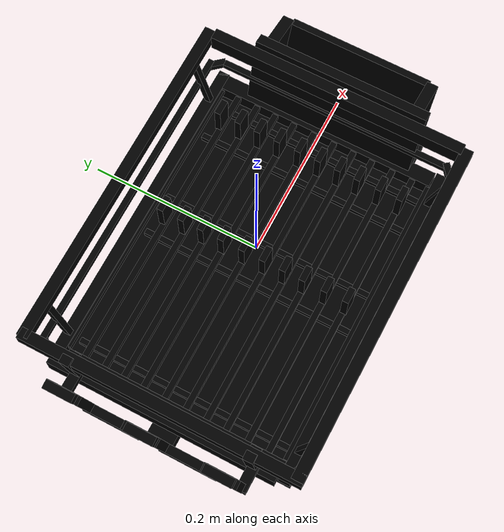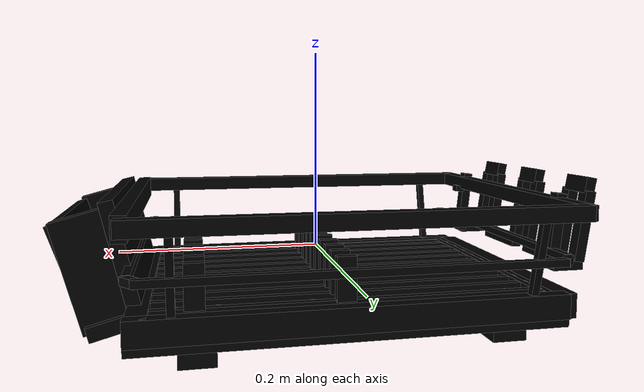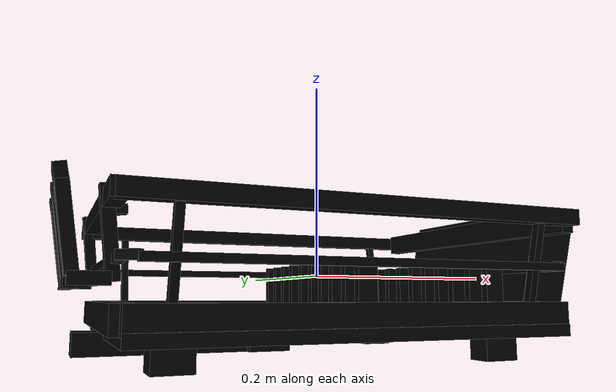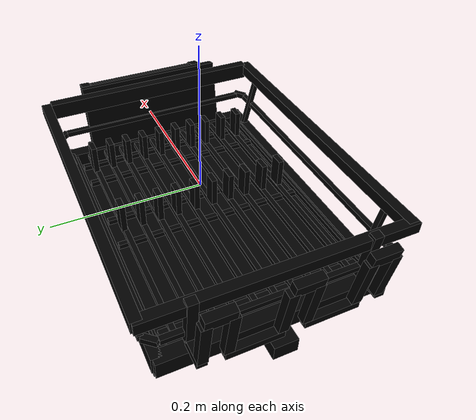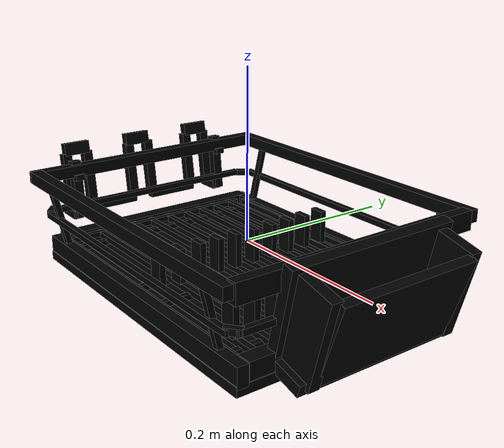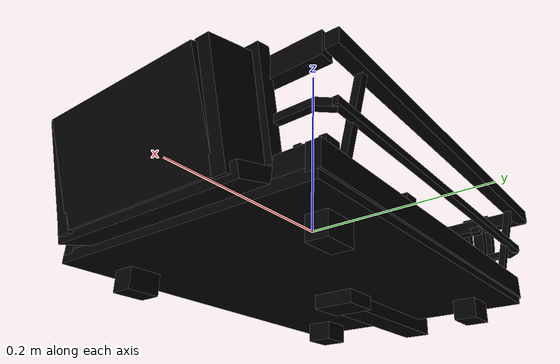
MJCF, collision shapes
<mujoco model="model">
  <option timestep="0.002" gravity="0.0 0.0 -9.81" />
  <compiler angle="radian" />
  <asset>
    <mesh file="visual/DishRack047.obj" name="DishRack047_vis" scale="0.6 0.6 0.6" />
    <texture file="visual/T_BC001.png" name="DishRack047_material" type="2d" />
    <material name="DishRack047_material" rgba="1 1 1 1.0" texture="DishRack047_material" shininess="0.4472135901451111" specular="0.3103448502657381" />
  </asset>
  <default>
    <default class="visual">
      <geom conaffinity="0" contype="0" group="2" type="mesh" density="0" />
    </default>
    <default class="collision">
      <geom group="3" rgba="1 1 1 0.25" density="0" solref="0.004 1" solimp="0.998 0.998 0.001" friction="0.5" />
    </default>
    <default class="spawn">
      <geom group="0" rgba="1 1 1 0.5" contype="0" conaffinity="0" />
      <site group="0" rgba="1 1 1 0.5" />
    </default>
    <default class="region">
      <geom group="1" conaffinity="0" contype="0" rgba="0 1 0 0" mass="0" />
    </default>
  </default>
  <worldbody>
    <body>
      <body name="object">
        <geom mesh="DishRack047_vis" type="mesh" class="visual" material="DishRack047_material" group="2" contype="0" conaffinity="0" density="0" mass="0.5" />
        <geom type="box" pos="-0.0110547 -0.152785806 0.006230298" size="0.188106787204 0.00350044062361 0.00350045515224" quat="1.0 0.0 0.0 0.0" class="collision" group="3" rgba="0 0 0 0" density="0" friction="0.5" solref="0.004 1" solimp="0.998 0.998 0.001" />
        <geom type="box" pos="-0.0110547 0.15123204 0.006230298" size="0.188106787204 0.00350044062361 0.00350045515224" quat="1.0 0.0 0.0 0.0" class="collision" group="3" rgba="0 0 0 0" density="0" friction="0.5" solref="0.004 1" solimp="0.998 0.998 0.001" />
        <geom type="box" pos="-0.012644634 -0.114097266 -0.031181004" size="0.188188683987 0.00350044062361 0.00350045515224" quat="1.0 0.0 0.0 0.0" class="collision" group="3" rgba="0 0 0 0" density="0" friction="0.5" solref="0.004 1" solimp="0.998 0.998 0.001" />
        <geom type="box" pos="-0.012644634 -0.089188212 -0.031181004" size="0.188188683987 0.00350044062361 0.00350045515224" quat="1.0 0.0 0.0 0.0" class="collision" group="3" rgba="0 0 0 0" density="0" friction="0.5" solref="0.004 1" solimp="0.998 0.998 0.001" />
        <geom type="box" pos="-0.012644634 -0.063219198 -0.031181004" size="0.188188683987 0.00350044062361 0.00350045515224" quat="1.0 0.0 0.0 0.0" class="collision" group="3" rgba="0 0 0 0" density="0" friction="0.5" solref="0.004 1" solimp="0.998 0.998 0.001" />
        <geom type="box" pos="-0.012644634 -0.039370104 -0.031181004" size="0.188188683987 0.00350044062361 0.00350045515224" quat="1.0 0.0 0.0 0.0" class="collision" group="3" rgba="0 0 0 0" density="0" friction="0.5" solref="0.004 1" solimp="0.998 0.998 0.001" />
        <geom type="box" pos="-0.012644634 -0.014461056 -0.031181004" size="0.188188683987 0.00350044062361 0.00350045515224" quat="1.0 0.0 0.0 0.0" class="collision" group="3" rgba="0 0 0 0" density="0" friction="0.5" solref="0.004 1" solimp="0.998 0.998 0.001" />
        <geom type="box" pos="-0.012644634 0.011507952 -0.031181004" size="0.188188683987 0.00350044062361 0.00350045515224" quat="1.0 0.0 0.0 0.0" class="collision" group="3" rgba="0 0 0 0" density="0" friction="0.5" solref="0.004 1" solimp="0.998 0.998 0.001" />
        <geom type="box" pos="-0.012644634 0.037476966 -0.031181004" size="0.188188683987 0.00350044062361 0.00350045515224" quat="1.0 0.0 0.0 0.0" class="collision" group="3" rgba="0 0 0 0" density="0" friction="0.5" solref="0.004 1" solimp="0.998 0.998 0.001" />
        <geom type="box" pos="-0.012644634 0.061856034 -0.031181004" size="0.188188683987 0.00350044062361 0.00350045515224" quat="1.0 0.0 0.0 0.0" class="collision" group="3" rgba="0 0 0 0" density="0" friction="0.5" solref="0.004 1" solimp="0.998 0.998 0.001" />
        <geom type="box" pos="-0.012644634 0.085705128 -0.031181004" size="0.188188683987 0.00350044062361 0.00350045515224" quat="1.0 0.0 0.0 0.0" class="collision" group="3" rgba="0 0 0 0" density="0" friction="0.5" solref="0.004 1" solimp="0.998 0.998 0.001" />
        <geom type="box" pos="-0.012644634 0.110614176 -0.031181004" size="0.188188683987 0.00350044062361 0.00350045515224" quat="1.0 0.0 0.0 0.0" class="collision" group="3" rgba="0 0 0 0" density="0" friction="0.5" solref="0.004 1" solimp="0.998 0.998 0.001" />
        <geom type="box" pos="-0.0110547 0.13287333 -0.031181004" size="0.176792621613 0.00350044062361 0.00350045431406" quat="1.0 0.0 0.0 0.0" class="collision" group="3" rgba="0 0 0 0" density="0" friction="0.5" solref="0.004 1" solimp="0.998 0.998 0.001" />
        <geom type="box" pos="-0.0110547 -0.134766462 -0.031181004" size="0.176792621613 0.00350044062361 0.00350045431406" quat="1.0 0.0 0.0 0.0" class="collision" group="3" rgba="0 0 0 0" density="0" friction="0.5" solref="0.004 1" solimp="0.998 0.998 0.001" />
        <geom type="box" pos="-0.209303796 -0.003214332 0.006230298" size="0.00350044677033 0.138677448034 0.00350046521053" quat="1.0 0.0 0.0 0.0" class="collision" group="3" rgba="0 0 0 0" density="0" friction="0.5" solref="0.004 1" solimp="0.998 0.998 0.001" />
        <geom type="box" pos="0.181363398 -0.005981382 0.006230298" size="0.00350044677033 0.142494696379 0.00350046548992" quat="1.0 0.0 0.0 0.0" class="collision" group="3" rgba="0 0 0 0" density="0" friction="0.5" solref="0.004 1" solimp="0.998 0.998 0.001" />
        <geom type="box" pos="-0.191852736 -0.005981382 -0.030909408" size="0.00329910591244 0.129492518306 0.0032991008833" quat="1.0 0.0 0.0 0.0" class="collision" group="3" rgba="0 0 0 0" density="0" friction="0.5" solref="0.004 1" solimp="0.998 0.998 0.001" />
        <geom type="box" pos="0.17012877 -0.005981382 -0.030909408" size="0.00329910591244 0.114463278651 0.00329911233857" quat="1.0 0.0 0.0 0.0" class="collision" group="3" rgba="0 0 0 0" density="0" friction="0.5" solref="0.004 1" solimp="0.998 0.998 0.001" />
        <geom type="box" pos="-0.0110547 -0.003175404 -0.050537478" size="0.196436440945 0.146966850758 0.00554275810719" quat="1.0 0.0 0.0 0.0" class="collision" group="3" rgba="0 0 0 0" density="0" friction="0.5" solref="0.004 1" solimp="0.998 0.998 0.001" />
        <geom type="box" pos="-0.137982678 -0.002086902 -0.060923736" size="0.0949306905274 0.0157099094241 0.0103274736554" quat="1.0 0.0 0.0 0.0" class="collision" group="3" rgba="0 0 0 0" density="0" friction="0.5" solref="0.004 1" solimp="0.998 0.998 0.001" />
        <geom type="box" pos="-0.213934842 -0.002086902 0.051045396" size="0.00659133978189 0.163901674748 0.00724479015916" quat="1.0 0.0 0.0 0.0" class="collision" group="3" rgba="0 0 0 0" density="0" friction="0.5" solref="0.004 1" solimp="0.998 0.998 0.001" />
        <geom type="box" pos="0.184354368 -0.002086902 0.049027014" size="0.00644777845592 0.152910161019 0.0110969725996" quat="1.0 0.0 0.0 0.0" class="collision" group="3" rgba="0 0 0 0" density="0" friction="0.5" solref="0.004 1" solimp="0.998 0.998 0.001" />
        <geom type="box" pos="-0.014505558 -0.159233262 0.051045396" size="0.20247913599 0.00683679264039 0.00724480804056" quat="1.0 0.0 0.0 0.0" class="collision" group="3" rgba="0 0 0 0" density="0" friction="0.5" solref="0.004 1" solimp="0.998 0.998 0.001" />
        <geom type="box" pos="-0.014505558 0.15726615 0.051045396" size="0.202478653192 0.0063889939338 0.00724480804056" quat="1.0 0.0 0.0 0.0" class="collision" group="3" rgba="0 0 0 0" density="0" friction="0.5" solref="0.004 1" solimp="0.998 0.998 0.001" />
        <geom type="box" pos="-0.005493324 -0.115210962 -0.008390556" size="0.00914734192191 0.0037315947935 0.0207619875669" quat="1.0 0.0 0.0 0.0" class="collision" group="3" rgba="0 0 0 0" density="0" friction="0.5" solref="0.004 1" solimp="0.998 0.998 0.001" />
        <geom type="box" pos="-0.005493324 -0.089616654 -0.008390556" size="0.00914734192191 0.0037315947935 0.0207619898021" quat="1.0 0.0 0.0 0.0" class="collision" group="3" rgba="0 0 0 0" density="0" friction="0.5" solref="0.004 1" solimp="0.998 0.998 0.001" />
        <geom type="box" pos="-0.005493324 -0.06310983 -0.008390556" size="0.00914734192191 0.0037315947935 0.0207619898021" quat="1.0 0.0 0.0 0.0" class="collision" group="3" rgba="0 0 0 0" density="0" friction="0.5" solref="0.004 1" solimp="0.998 0.998 0.001" />
        <geom type="box" pos="-0.005493324 -0.039004794 -0.008390556" size="0.00914734192191 0.0037315947935 0.0207619920373" quat="1.0 0.0 0.0 0.0" class="collision" group="3" rgba="0 0 0 0" density="0" friction="0.5" solref="0.004 1" solimp="0.998 0.998 0.001" />
        <geom type="box" pos="-0.005493324 -0.014425092 -0.008390556" size="0.00914734192191 0.0037315947935 0.0207619920373" quat="1.0 0.0 0.0 0.0" class="collision" group="3" rgba="0 0 0 0" density="0" friction="0.5" solref="0.004 1" solimp="0.998 0.998 0.001" />
        <geom type="box" pos="-0.005493324 0.010770948 -0.008390556" size="0.00914734192191 0.0037315947935 0.0207619942725" quat="1.0 0.0 0.0 0.0" class="collision" group="3" rgba="0 0 0 0" density="0" friction="0.5" solref="0.004 1" solimp="0.998 0.998 0.001" />
        <geom type="box" pos="-0.005493324 0.036903918 -0.008390556" size="0.00914734192191 0.0037315947935 0.0207619942725" quat="1.0 0.0 0.0 0.0" class="collision" group="3" rgba="0 0 0 0" density="0" friction="0.5" solref="0.004 1" solimp="0.998 0.998 0.001" />
        <geom type="box" pos="-0.005493324 0.062070894 -0.008390556" size="0.00914734192191 0.0037315947935 0.0207619965076" quat="1.0 0.0 0.0 0.0" class="collision" group="3" rgba="0 0 0 0" density="0" friction="0.5" solref="0.004 1" solimp="0.998 0.998 0.001" />
        <geom type="box" pos="-0.005493324 0.086617974 -0.008390556" size="0.00914734192191 0.0037315947935 0.0207619965076" quat="1.0 0.0 0.0 0.0" class="collision" group="3" rgba="0 0 0 0" density="0" friction="0.5" solref="0.004 1" solimp="0.998 0.998 0.001" />
        <geom type="box" pos="-0.005493324 0.112356582 -0.008390556" size="0.00914734192191 0.0037315947935 0.0207619987428" quat="1.0 0.0 0.0 0.0" class="collision" group="3" rgba="0 0 0 0" density="0" friction="0.5" solref="0.004 1" solimp="0.998 0.998 0.001" />
        <geom type="box" pos="0.12789813 -0.115210962 -0.008390556" size="0.00914734192191 0.0037315947935 0.0207619987428" quat="1.0 0.0 0.0 0.0" class="collision" group="3" rgba="0 0 0 0" density="0" friction="0.5" solref="0.004 1" solimp="0.998 0.998 0.001" />
        <geom type="box" pos="0.12789813 -0.089616654 -0.008390556" size="0.00914734192191 0.0037315947935 0.0207620009781" quat="1.0 0.0 0.0 0.0" class="collision" group="3" rgba="0 0 0 0" density="0" friction="0.5" solref="0.004 1" solimp="0.998 0.998 0.001" />
        <geom type="box" pos="0.12789813 -0.06310983 -0.008390556" size="0.00914734192191 0.0037315947935 0.0207620032131" quat="1.0 0.0 0.0 0.0" class="collision" group="3" rgba="0 0 0 0" density="0" friction="0.5" solref="0.004 1" solimp="0.998 0.998 0.001" />
        <geom type="box" pos="0.12789813 -0.039004794 -0.008390556" size="0.00914734192191 0.0037315947935 0.0207620032131" quat="1.0 0.0 0.0 0.0" class="collision" group="3" rgba="0 0 0 0" density="0" friction="0.5" solref="0.004 1" solimp="0.998 0.998 0.001" />
        <geom type="box" pos="0.12789813 -0.014425092 -0.008390556" size="0.00914734192191 0.0037315947935 0.0207620054483" quat="1.0 0.0 0.0 0.0" class="collision" group="3" rgba="0 0 0 0" density="0" friction="0.5" solref="0.004 1" solimp="0.998 0.998 0.001" />
        <geom type="box" pos="0.12789813 0.010770948 -0.008390556" size="0.00914734192191 0.0037315947935 0.0207620054483" quat="1.0 0.0 0.0 0.0" class="collision" group="3" rgba="0 0 0 0" density="0" friction="0.5" solref="0.004 1" solimp="0.998 0.998 0.001" />
        <geom type="box" pos="0.12789813 0.036903918 -0.008390556" size="0.00914734192191 0.0037315947935 0.0207620076836" quat="1.0 0.0 0.0 0.0" class="collision" group="3" rgba="0 0 0 0" density="0" friction="0.5" solref="0.004 1" solimp="0.998 0.998 0.001" />
        <geom type="box" pos="0.12789813 0.062070894 -0.008390556" size="0.00914734192191 0.0037315947935 0.0207620076836" quat="1.0 0.0 0.0 0.0" class="collision" group="3" rgba="0 0 0 0" density="0" friction="0.5" solref="0.004 1" solimp="0.998 0.998 0.001" />
        <geom type="box" pos="0.12789813 0.086617974 -0.008390556" size="0.00914734192191 0.0037315947935 0.0207620099187" quat="1.0 0.0 0.0 0.0" class="collision" group="3" rgba="0 0 0 0" density="0" friction="0.5" solref="0.004 1" solimp="0.998 0.998 0.001" />
        <geom type="box" pos="0.12789813 0.112356582 -0.008390556" size="0.00914734192191 0.0037315947935 0.0207620099187" quat="1.0 0.0 0.0 0.0" class="collision" group="3" rgba="0 0 0 0" density="0" friction="0.5" solref="0.004 1" solimp="0.998 0.998 0.001" />
        <geom type="box" pos="0.187590366 -0.001601094 0.01168944" size="0.00644777789712 0.104049271346 0.0545912414789" quat="0.9935942888259888 -6.35997176605174e-16 0.11300608515739441 1.5183358570425298e-08" class="collision" group="3" rgba="0 0 0 0" density="0" friction="0.5" solref="0.004 1" solimp="0.998 0.998 0.001" />
        <geom type="box" pos="0.232199754 -0.001601088 -0.002591088" size="0.00527115706354 0.0855528295042 0.0484488934279" quat="0.9861871004104614 -2.8458485906907895e-15 0.16563507914543152 2.2254532439092145e-08" class="collision" group="3" rgba="0 0 0 0" density="0" friction="0.5" solref="0.004 1" solimp="0.998 0.998 0.001" />
        <geom type="box" pos="0.19887327 -0.0016011 -0.04470438" size="0.0196398876608 0.104049271346 0.00670567397028" quat="0.9911223649978638 -1.0421047673558637e-16 0.13295304775238037 1.7863408530160996e-08" class="collision" group="3" rgba="0 0 0 0" density="0" friction="0.5" solref="0.004 1" solimp="0.998 0.998 0.001" />
        <geom type="box" pos="0.211794348 -0.091015704 0.002918772" size="0.0240440100431 0.00674592889845 0.0510909050703" quat="0.9913440346717834 -6.42913624135979e-16 0.13128969073295593 1.763993040526657e-08" class="collision" group="3" rgba="0 0 0 0" density="0" friction="0.5" solref="0.004 1" solimp="0.998 0.998 0.001" />
        <geom type="box" pos="0.126280914 0.110960994 -0.065867268" size="0.0168216783554 0.0106527663767 0.0121577985585" quat="1.0 0.0 0.0 0.0" class="collision" group="3" rgba="0 0 0 0" density="0" friction="0.5" solref="0.004 1" solimp="0.998 0.998 0.001" />
        <geom type="box" pos="0.126280914 -0.115144668 -0.065867268" size="0.0168216425925 0.0116912674159 0.0121577985585" quat="1.0 0.0 0.0 0.0" class="collision" group="3" rgba="0 0 0 0" density="0" friction="0.5" solref="0.004 1" solimp="0.998 0.998 0.001" />
        <geom type="box" pos="-0.16604232 0.099935274 -0.065867268" size="0.0168216750026 0.0127855036407 0.0121578220278" quat="1.0 0.0 0.0 0.0" class="collision" group="3" rgba="0 0 0 0" density="0" friction="0.5" solref="0.004 1" solimp="0.998 0.998 0.001" />
        <geom type="box" pos="-0.16604232 -0.099860802 -0.065867268" size="0.0168216425925 0.0154395941645 0.0121577873826" quat="1.0 0.0 0.0 0.0" class="collision" group="3" rgba="0 0 0 0" density="0" friction="0.5" solref="0.004 1" solimp="0.998 0.998 0.001" />
        <geom type="box" pos="-0.21428655 0.103575408 0.026061042" size="0.00516639109701 0.00598991420121 0.036281836778" quat="0.9985668063163757 2.443151657511558e-16 -0.05351945385336876 -7.190811501800454e-09" class="collision" group="3" rgba="0 0 0 0" density="0" friction="0.5" solref="0.004 1" solimp="0.998 0.998 0.001" />
        <geom type="box" pos="-0.243680736 0.103575408 0.029387634" size="0.00516639109701 0.00598991420121 0.0345643512904" quat="0.9973001480102539 -2.903279277399203e-16 -0.07343317568302155 -9.866401917690837e-09" class="collision" group="3" rgba="0 0 0 0" density="0" friction="0.5" solref="0.004 1" solimp="0.998 0.998 0.001" />
        <geom type="box" pos="-0.226990908 0.103575408 -0.00755016" size="0.0153317470103 0.00598992425949 0.00516639892011" quat="1.0 0.0 0.0 0.0" class="collision" group="3" rgba="0 0 0 0" density="0" friction="0.5" solref="0.004 1" solimp="0.998 0.998 0.001" />
        <geom type="box" pos="-0.249711132 0.089773776 0.06881598" size="0.00516639109701 0.0168689087033 0.00791731439528" quat="0.9956201910972595 -1.6473252929901283e-16 -0.09349023550748825 -1.2561237383579282e-08" class="collision" group="3" rgba="0 0 0 0" density="0" friction="0.5" solref="0.004 1" solimp="0.998 0.998 0.001" />
        <geom type="box" pos="-0.243680736 0.074907186 0.029387634" size="0.00516639109701 0.00598991420121 0.0345643512904" quat="0.9973001480102539 -2.903279277399203e-16 -0.07343317568302155 -9.866401917690837e-09" class="collision" group="3" rgba="0 0 0 0" density="0" friction="0.5" solref="0.004 1" solimp="0.998 0.998 0.001" />
        <geom type="box" pos="-0.243680736 0.013421298 0.029387634" size="0.00516639109701 0.00598991420121 0.0345643512904" quat="0.9973001480102539 -2.903279277399203e-16 -0.07343317568302155 -9.866401917690837e-09" class="collision" group="3" rgba="0 0 0 0" density="0" friction="0.5" solref="0.004 1" solimp="0.998 0.998 0.001" />
        <geom type="box" pos="-0.238604388 0.044928684 -0.010037124" size="0.00516639109701 0.034071971476 0.00431520156562" quat="1.0 0.0 0.0 0.0" class="collision" group="3" rgba="0 0 0 0" density="0" friction="0.5" solref="0.004 1" solimp="0.998 0.998 0.001" />
        <geom type="box" pos="-0.243680736 -0.015246918 0.029387634" size="0.00516639109701 0.00598991420121 0.0345643512904" quat="0.9973001480102539 -2.903279277399203e-16 -0.07343317568302155 -9.866401917690837e-09" class="collision" group="3" rgba="0 0 0 0" density="0" friction="0.5" solref="0.004 1" solimp="0.998 0.998 0.001" />
        <geom type="box" pos="-0.243680736 -0.07651269 0.029387634" size="0.00516639109701 0.00598991420121 0.0345643512904" quat="0.9973001480102539 -2.903279277399203e-16 -0.07343317568302155 -9.866401917690837e-09" class="collision" group="3" rgba="0 0 0 0" density="0" friction="0.5" solref="0.004 1" solimp="0.998 0.998 0.001" />
        <geom type="box" pos="-0.249711132 -0.09031431 0.06881598" size="0.00516639109701 0.0168689087033 0.00791731439528" quat="0.9956201910972595 -1.6473252929901283e-16 -0.09349023550748825 -1.2561237383579282e-08" class="collision" group="3" rgba="0 0 0 0" density="0" friction="0.5" solref="0.004 1" solimp="0.998 0.998 0.001" />
        <geom type="box" pos="-0.243680736 -0.105180906 0.029387634" size="0.00516639109701 0.00598991420121 0.0345643512904" quat="0.9973001480102539 -2.903279277399203e-16 -0.07343317568302155 -9.866401917690837e-09" class="collision" group="3" rgba="0 0 0 0" density="0" friction="0.5" solref="0.004 1" solimp="0.998 0.998 0.001" />
        <geom type="box" pos="-0.238604388 -0.04699437 -0.010037124" size="0.00516639109701 0.034071971476 0.00431520184503" quat="1.0 0.0 0.0 0.0" class="collision" group="3" rgba="0 0 0 0" density="0" friction="0.5" solref="0.004 1" solimp="0.998 0.998 0.001" />
        <geom type="box" pos="-0.249711132 -0.002576334 0.06881598" size="0.00516639109701 0.0168689087033 0.00791731439528" quat="0.9956201910972595 -1.6473252929901283e-16 -0.09349023550748825 -1.2561237383579282e-08" class="collision" group="3" rgba="0 0 0 0" density="0" friction="0.5" solref="0.004 1" solimp="0.998 0.998 0.001" />
        <geom type="box" pos="-0.0110547 0.13930575 -0.036787056" size="0.196437478065 0.00664793718606 0.011631134525" quat="1.0 0.0 0.0 0.0" class="collision" group="3" rgba="0 0 0 0" density="0" friction="0.5" solref="0.004 1" solimp="0.998 0.998 0.001" />
        <geom type="box" pos="-0.205682562 0.004513236 -0.036787056" size="0.00903347991403 0.139134514332 0.0116311278195" quat="1.0 0.0 0.0 0.0" class="collision" group="3" rgba="0 0 0 0" density="0" friction="0.5" solref="0.004 1" solimp="0.998 0.998 0.001" />
        <geom type="box" pos="-0.0110547 -0.142692072 -0.036787056" size="0.196437478065 0.00664793718606 0.011631134525" quat="1.0 0.0 0.0 0.0" class="collision" group="3" rgba="0 0 0 0" density="0" friction="0.5" solref="0.004 1" solimp="0.998 0.998 0.001" />
        <geom type="box" pos="0.175218156 0.004513236 -0.036787056" size="0.00903348214929 0.139134532214 0.011631128937" quat="1.0 0.0 0.0 0.0" class="collision" group="3" rgba="0 0 0 0" density="0" friction="0.5" solref="0.004 1" solimp="0.998 0.998 0.001" />
        <geom type="box" pos="-0.17382312 -0.005981382 -0.036112692" size="0.00329911513254 0.131776061655 0.00329911038279" quat="1.0 0.0 0.0 0.0" class="collision" group="3" rgba="0 0 0 0" density="0" friction="0.5" solref="0.004 1" solimp="0.998 0.998 0.001" />
        <geom type="box" pos="-0.029225454 -0.005981382 -0.036112692" size="0.00329911569134 0.131776070595 0.0032991106622" quat="1.0 0.0 0.0 0.0" class="collision" group="3" rgba="0 0 0 0" density="0" friction="0.5" solref="0.004 1" solimp="0.998 0.998 0.001" />
        <geom type="box" pos="0.01897434 -0.005981382 -0.036112692" size="0.00329911597073 0.131776079535 0.00329911094159" quat="1.0 0.0 0.0 0.0" class="collision" group="3" rgba="0 0 0 0" density="0" friction="0.5" solref="0.004 1" solimp="0.998 0.998 0.001" />
        <geom type="box" pos="0.10567539 -0.005981382 -0.036112692" size="0.00329911625013 0.131776097417 0.00329911122099" quat="1.0 0.0 0.0 0.0" class="collision" group="3" rgba="0 0 0 0" density="0" friction="0.5" solref="0.004 1" solimp="0.998 0.998 0.001" />
        <geom type="box" pos="-0.226990908 -0.10908765 -0.00755016" size="0.0153317470103 0.00598991643638 0.00516639389097" quat="1.0 0.0 0.0 0.0" class="collision" group="3" rgba="0 0 0 0" density="0" friction="0.5" solref="0.004 1" solimp="0.998 0.998 0.001" />
        <geom type="box" pos="-0.21428655 -0.107407368 0.026061042" size="0.00516639109701 0.00598991420121 0.036281836778" quat="0.9985668063163757 2.443151657511558e-16 -0.05351945385336876 -7.190811501800454e-09" class="collision" group="3" rgba="0 0 0 0" density="0" friction="0.5" solref="0.004 1" solimp="0.998 0.998 0.001" />
        <geom type="box" pos="0.211794348 0.089027826 0.002918772" size="0.0240440100431 0.00674592889845 0.0510909050703" quat="0.9913440346717834 -6.42913624135979e-16 0.13128969073295593 1.763993040526657e-08" class="collision" group="3" rgba="0 0 0 0" density="0" friction="0.5" solref="0.004 1" solimp="0.998 0.998 0.001" />
        <geom type="box" pos="0.14675178 0.146763654 0.006230298" size="0.00350044062361 0.00350044034421 0.0485163867473" quat="7.700290893808415e-08 -8.446813026807831e-09 0.9932133555412292 -0.11630657315254211" class="collision" group="3" rgba="0 0 0 0" density="0" friction="0.5" solref="0.004 1" solimp="0.998 0.998 0.001" />
        <geom type="box" pos="-0.1734882 0.146763654 0.006230298" size="0.00350044062361 0.00350044034421 0.0485163867473" quat="7.700290893808415e-08 -8.446813026807831e-09 0.9932133555412292 -0.11630657315254211" class="collision" group="3" rgba="0 0 0 0" density="0" friction="0.5" solref="0.004 1" solimp="0.998 0.998 0.001" />
        <geom type="box" pos="-0.05929101 -0.002086902 -0.060923736" size="0.0197763517499 0.0232433773577 0.0103274993599" quat="1.0 0.0 0.0 0.0" class="collision" group="3" rgba="0 0 0 0" density="0" friction="0.5" solref="0.004 1" solimp="0.998 0.998 0.001" />
        <geom type="box" pos="0.14675178 -0.149676552 0.006230298" size="0.00350044062361 0.00350044034421 0.0485163867473" quat="7.700290893808415e-08 8.446813026807831e-09 0.9932133555412292 0.11630656570196152" class="collision" group="3" rgba="0 0 0 0" density="0" friction="0.5" solref="0.004 1" solimp="0.998 0.998 0.001" />
        <geom type="box" pos="-0.1734882 -0.149676552 0.006230298" size="0.00350044062361 0.00350044034421 0.0485163867473" quat="7.700290893808415e-08 8.446813026807831e-09 0.9932133555412292 0.11630656570196152" class="collision" group="3" rgba="0 0 0 0" density="0" friction="0.5" solref="0.004 1" solimp="0.998 0.998 0.001" />
        <geom type="box" pos="-0.204424068 -0.147772386 0.007499136" size="0.00373159311711 0.00914734080437 0.00375612387434" quat="0.8977609872817993 0.0 0.0 0.4404829740524292" class="collision" group="3" rgba="0 0 0 0" density="0" friction="0.5" solref="0.004 1" solimp="0.998 0.998 0.001" />
        <geom type="box" pos="-0.204424068 0.143333502 0.005573436" size="0.00373159283772 0.00914734080437 0.00375612387434" quat="0.3487342298030853 0.0 0.0 0.9372216463088989" class="collision" group="3" rgba="0 0 0 0" density="0" friction="0.5" solref="0.004 1" solimp="0.998 0.998 0.001" />
        <geom type="box" pos="0.177460092 -0.147772398 0.007499136" size="0.00373159311711 0.00914734080437 0.00375612387434" quat="0.8977609872817993 0.0 -0.0 -0.4404829740524292" class="collision" group="3" rgba="0 0 0 0" density="0" friction="0.5" solref="0.004 1" solimp="0.998 0.998 0.001" />
        <geom type="box" pos="0.177460092 0.143333502 0.005573436" size="0.00373159311711 0.00914734024551 0.00375612387434" quat="0.3487343490123749 0.0 -0.0 -0.9372216463088989" class="collision" group="3" rgba="0 0 0 0" density="0" friction="0.5" solref="0.004 1" solimp="0.998 0.998 0.001" />
        <geom type="box" pos="0.146297544 -0.005981382 -0.036112692" size="0.00329911764711 0.13177613318 0.00329911177977" quat="1.0 0.0 0.0 0.0" class="collision" group="3" rgba="0 0 0 0" density="0" friction="0.5" solref="0.004 1" solimp="0.998 0.998 0.001" />
        <geom type="box" pos="0.203764998 -0.049962408 -0.03685392" size="0.0122370500117 0.00179488244467 0.00797662585972" quat="0.9913440346717834 -6.42913624135979e-16 0.13128969073295593 1.763993040526657e-08" class="collision" group="3" rgba="0 0 0 0" density="0" friction="0.5" solref="0.004 1" solimp="0.998 0.998 0.001" />
        <geom type="box" pos="0.203764998 -0.00161343 -0.03685392" size="0.0122370500117 0.00179488244467 0.00797662585972" quat="0.9913440346717834 -6.42913624135979e-16 0.13128969073295593 1.763993040526657e-08" class="collision" group="3" rgba="0 0 0 0" density="0" friction="0.5" solref="0.004 1" solimp="0.998 0.998 0.001" />
        <geom type="box" pos="0.203764998 0.046998174 -0.03685392" size="0.0122370500117 0.00179488244467 0.00797662585972" quat="0.9913440346717834 -6.42913624135979e-16 0.13128969073295593 1.763993040526657e-08" class="collision" group="3" rgba="0 0 0 0" density="0" friction="0.5" solref="0.004 1" solimp="0.998 0.998 0.001" />
        <geom type="box" pos="-0.20759535 0.103575408 0.043190532" size="0.00516639053822 0.00598991420121 0.00361043857411" quat="0.9985668063163757 2.443151657511558e-16 -0.05351945385336876 -7.190811501800454e-09" class="collision" group="3" rgba="0 0 0 0" density="0" friction="0.5" solref="0.004 1" solimp="0.998 0.998 0.001" />
        <geom type="box" pos="-0.20759535 -0.107407368 0.043190532" size="0.00516639053822 0.00598991420121 0.00361043857411" quat="0.9985668063163757 2.443151657511558e-16 -0.05351945385336876 -7.190811501800454e-09" class="collision" group="3" rgba="0 0 0 0" density="0" friction="0.5" solref="0.004 1" solimp="0.998 0.998 0.001" />
        <geom class="region" name="reg_int_0" type="box" pos="-0.109430208 -0.001797027 0.023683536" size="0.092858184 0.136015659 0.047713656" />
        <geom class="region" name="reg_int_1" type="box" pos="0.061153821 -0.001797027 0.023683539" size="0.055410759 0.136015659 0.047713653" />
        <geom size="0.254300406 0.164689788 0.079922982" pos="-0 0 0" name="reg_bbox" class="region" type="box" quat="1.0 0.0 0.0 0.0" />
      </body>
    </body>
  </worldbody>
  <actuator />
</mujoco>
